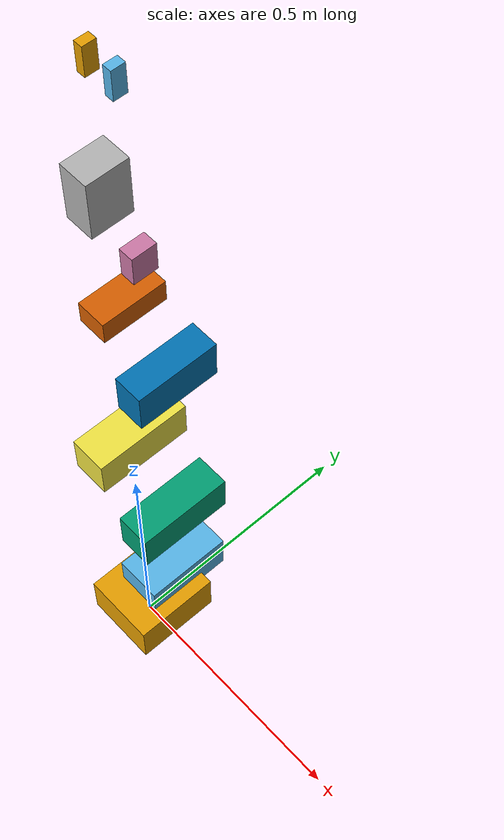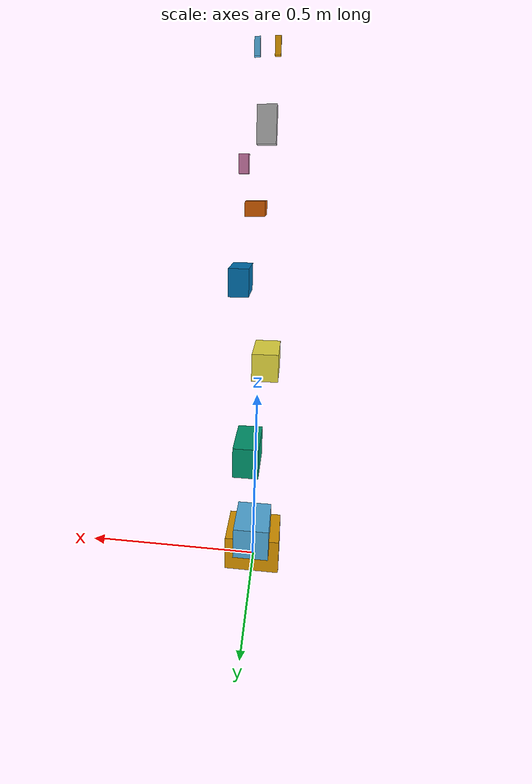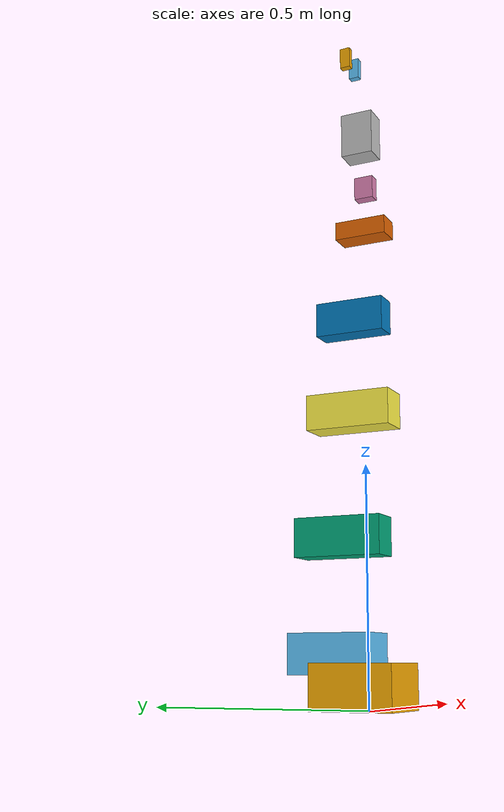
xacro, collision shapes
<?xml version="1.0"?>
<robot xmlns:xacro="http://www.ros.org/wiki/xacro" name="cyton_gamma_1500">

    <link name="cyton_gamma_1500_base_link">
      <visual>
        <origin xyz="0 0 0" rpy="0 0 0"/>
        <geometry>
          <mesh filename="package://mbot_simulator/meshes/base.dae"/>
        </geometry>
      </visual>
      <collision>
        <origin xyz="0 0.0115 0.047"/>
        <geometry>
          <box size="0.154 0.177 0.094"/>
        </geometry>
      </collision>
    </link>

    <joint name="cyton_gamma_1500_shoulder_roll_joint" type="revolute">
      <parent link="cyton_gamma_1500_base_link" />
      <child link="cyton_gamma_1500_shoulder_roll" />
      <origin xyz="0 0 0.05315" rpy="0 0 0" />
      <limit lower="-2.618" upper="2.618" effort="100.0" velocity="1.0" />
      <axis xyz="0 0 1" />
    </joint>

    <link name="cyton_gamma_1500_shoulder_roll">
      <visual>
        <origin xyz="0 0 0" rpy="1.5708 0 0.384"/>
        <geometry>
          <mesh filename="package://mbot_simulator/meshes/shoulder_roll.dae"/>
        </geometry>
      </visual>
      <collision>
        <origin xyz="0.0 0.069 0.0587"/>
        <geometry>
          <box size="0.09829 0.18143 0.08392"/>
        </geometry>
      </collision>
    </link>

    <joint name="cyton_gamma_1500_shoulder_pitch_joint" type="revolute">
      <parent link="cyton_gamma_1500_shoulder_roll" />
      <child link="cyton_gamma_1500_shoulder_pitch" />
      <origin xyz="0.0205 0 0.12435" rpy="0 0 0" />
      <limit lower="-1.8326" upper="1.8326" effort="100.0" velocity="1.0" />
      <axis xyz="1 0 0" />
    </joint>

    <link name="cyton_gamma_1500_shoulder_pitch">
      <visual>
        <origin xyz="0 0 0" rpy="1.5708 0 0" />
        <geometry>
          <mesh filename="package://mbot_simulator/meshes/shoulder_pitch.dae"/>
        </geometry>
      </visual>
      <collision>
        <origin xyz="-0.001 0.064 0.1745"/>
        <geometry>
          <box size="0.0709 0.19363 0.083"/>
        </geometry>
      </collision>
    </link>

    <joint name="cyton_gamma_1500_shoulder_yaw_joint" type="revolute">
      <parent link="cyton_gamma_1500_shoulder_pitch" />
      <child link="cyton_gamma_1500_shoulder_yaw" />
      <origin xyz="-0.0215 -0.0205 0.1255" rpy="0 0 0" />
      <limit lower="-1.8326" upper="1.8326" effort="100.0" velocity="1.0" />
      <axis xyz="0 -1 0" />
    </joint>

    <link name="cyton_gamma_1500_shoulder_yaw">
      <visual>
        <origin xyz="0 0 0.0" rpy="1.5708 0 -1.5708" />
        <geometry>
          <mesh filename="package://mbot_simulator/meshes/shoulder_yaw.dae"/>
        </geometry>
      </visual>
      <collision>
        <origin xyz="-0.0225 0.039 0.3068"/>
        <geometry>
          <box size="0.0717 0.1846 0.0756"/>
        </geometry>
      </collision>
    </link>

    <joint name="cyton_gamma_1500_elbow_pitch_joint" type="revolute">
      <parent link="cyton_gamma_1500_shoulder_yaw" />
      <child link="cyton_gamma_1500_elbow_pitch" />
      <origin xyz="0.018 0.0206 0.1158" rpy="0 0 0" />
      <limit lower="-1.8326" upper="1.8326" effort="100.0" velocity="1.0" />
      <axis xyz="1 0 0" />
    </joint>

    <link name="cyton_gamma_1500_elbow_pitch">
      <visual>
        <origin xyz="0 0 0" rpy="1.5708 0 3.1416" />
        <geometry>
          <mesh filename="package://mbot_simulator/meshes/elbow_pitch.dae"/>
        </geometry>
      </visual>
      <collision>
        <origin xyz="0.0346 0.0461 0.4228"/>
        <geometry>
          <box size="0.0549 0.1557 0.076"/>
        </geometry>
      </collision>
    </link>

    <joint name="cyton_gamma_1500_elbow_yaw_joint" type="revolute">
      <parent link="cyton_gamma_1500_elbow_pitch" />
      <child link="cyton_gamma_1500_elbow_yaw" />
      <origin xyz="-0.0171 -0.018 0.09746" rpy="0 0 0" />
      <limit lower="-1.8326" upper="1.8326" effort="100.0" velocity="1.0" />
      <axis xyz="0 -1 0" />
    </joint>

    <link name="cyton_gamma_1500_elbow_yaw">
      <visual>
        <origin xyz="0 0 0" rpy="1.5708 0 1.5708" />
        <geometry>
          <mesh filename="package://mbot_simulator/meshes/elbow_yaw.dae"/>
        </geometry>
      </visual>
      <collision>
        <origin xyz="0.0172 0.0209 0.516"/>
        <geometry>
          <box size="0.0535 0.1160 0.0402"/>
        </geometry>
      </collision>
    </link>

    <joint name="cyton_gamma_1500_wrist_pitch_joint" type="revolute">
      <parent link="cyton_gamma_1500_elbow_yaw" />
      <child link="cyton_gamma_1500_wrist_pitch" />
      <origin xyz="0.02626 0.018 0.0718" rpy="0 0 0" />
      <limit lower="-1.8326" upper="1.8326" effort="100.0" velocity="1.0" />
      <axis xyz="-1 0 0" />
    </joint>

    <link name="cyton_gamma_1500_wrist_pitch">
      <visual>
        <origin xyz="0 0 0" rpy="1.5708 0 1.5708" />
        <geometry>
          <mesh filename="package://mbot_simulator/meshes/wrist_pitch.dae"/>
        </geometry>
      </visual>
      <collision>
        <origin xyz="0.0257 0.0118 0.5617"/>
        <geometry>
          <box size="0.026 0.0435 0.05185"/>
        </geometry>
      </collision>
    </link>

    <joint name="cyton_gamma_1500_wrist_roll_joint" type="revolute">
      <parent link="cyton_gamma_1500_wrist_pitch" />
      <child link="cyton_gamma_1500_wrist_roll" />
      <origin xyz="-0.026255 0 0.051425" rpy="0 0 0" />
      <limit lower="-2.61799" upper="2.61799" effort="100.0" velocity="1.0" />
      <axis xyz="0 0 1" />
    </joint>

    <link name="cyton_gamma_1500_wrist_roll">
      <visual>
        <origin xyz="0 0 0" rpy="3.1416 0 -1.5708" />
        <geometry>
          <mesh filename="package://mbot_simulator/meshes/wrist_roll.dae"/>
        </geometry>
      </visual>
      <collision>
        <origin xyz="-0.0063 -0.0014 0.6102"/>
        <geometry>
          <box size="0.0518 0.0723 0.1004"/>
        </geometry>
      </collision>
    </link>

    <joint name="cyton_gamma_1500_gripper_joint" type="prismatic">
      <parent link="cyton_gamma_1500_wrist_roll" />
      <child link="cyton_gamma_1500_gripper_finger1" />
      <origin xyz="-0.01331 0.00485 0.077225" rpy="0 0 0" />
      <limit lower="-0.008" upper="0.008" effort="100.0" velocity="1.0" />
      <axis xyz="1 0 0" />
    </joint>

    <link name="cyton_gamma_1500_gripper_finger1">
      <visual>
        <origin xyz="0 0 0" rpy="0 0 0" />
        <geometry>
          <mesh filename="package://mbot_simulator/meshes/gripper_finger1.dae"/>
        </geometry>
      </visual>
      <collision>
        <origin xyz="-0.0167 0.0172 0.7254"/>
        <geometry>
          <box size="0.015 0.0229 0.0475"/>
        </geometry>
      </collision>
    </link>

    <joint name="cyton_gamma_1500_gripper_joint2" type="prismatic">
      <parent link="cyton_gamma_1500_wrist_roll" />
      <child link="cyton_gamma_1500_gripper_finger2" />
      <origin xyz="0.0098 0.00485 0.077225" rpy="0 0 0" />
      <limit lower="-0.008" upper="0.008" effort="100.0" velocity="1.0" />
      <mimic joint="cyton_gamma_1500_gripper_joint" multiplier="-1"/>
      <axis xyz="1 0 0" />
    </joint>

    <link name="cyton_gamma_1500_gripper_finger2">
      <visual>
        <origin xyz="0 0 0" rpy="0 0 0" />
        <geometry>
          <mesh filename="package://mbot_simulator/meshes/gripper_finger2.dae"/>
        </geometry>
      </visual>
      <collision>
        <origin xyz="0.0132 0.0172 0.7254"/>
        <geometry>
          <box size="0.015 0.0229 0.0475"/>
        </geometry>
      </collision>
    </link>

    <joint name="cyton_gamma_1500_virtual_endeffector_joint" type="fixed">
        <parent link="cyton_gamma_1500_wrist_roll" />
        <child link="cyton_gamma_1500_virtual_endeffector" />
        <origin xyz="-0.002316 0.0079 0.079425" rpy="0 0 0" />
    </joint>

    <link name="cyton_gamma_1500_virtual_endeffector">
        <visual>
            <origin xyz="0 0 0" rpy="0 0 0" />
            <geometry>
                <sphere radius="0.002" />
            </geometry>
            <material name="grey">
                <color rgba="0.7 0.7 0.7 0.8" />
            </material>
        </visual>
    </link>

</robot>
